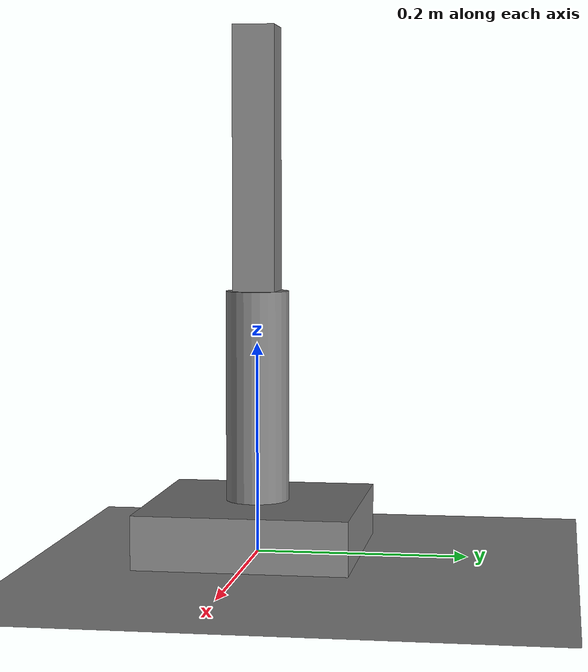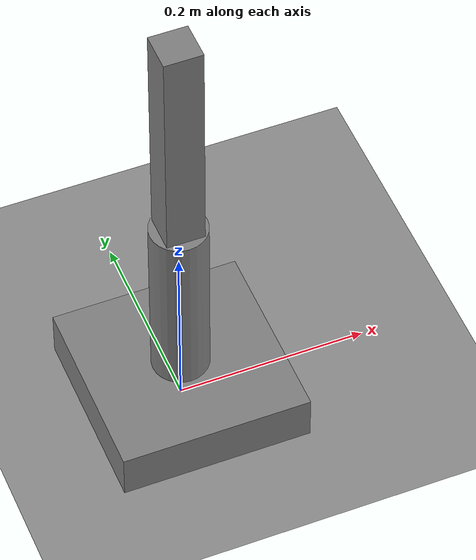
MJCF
<mujoco model="my_robot_scene">
  <include file="mujoco_description_formatted.xml"/>

  <statistic center="0 0 0.3" extent="1"/>

  <visual>
    <headlight diffuse="0.4 0.4 0.4" ambient="0.3 0.3 0.3" specular="0 0 0"/>
    <global azimuth="120" elevation="-20"/>
    <!-- The default shadowclip (1 x extent) speckles the floor with shadow acne; 6 renders clean. -->
    <map shadowclip="6"/>
  </visual>

  <asset>
    <texture type="skybox" builtin="gradient" rgb1="0.82 0.84 0.86" rgb2="0.45 0.55 0.68" width="512" height="3072"/>
    <texture type="2d" name="groundplane" builtin="checker" mark="edge" rgb1="0.6 0.6 0.6" rgb2="0.5 0.5 0.5"
             markrgb="0.8 0.8 0.8" width="300" height="300"/>
    <material name="groundplane" texture="groundplane" texuniform="true" texrepeat="5 5" reflectance="0.1"/>
  </asset>

  <worldbody>
    <!-- trackcom keeps the shadow map centred on the robot if it moves. -->
    <light name="key" directional="true" mode="trackcom" pos="0 0 2" dir="-0.45 0.35 -0.82" castshadow="true"/>
    <geom name="floor" type="plane" size="0 0 0.01" material="groundplane" contype="1" conaffinity="0"/>
  </worldbody>
</mujoco>

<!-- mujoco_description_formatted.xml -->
<mujoco model="my_robot">
  <compiler angle="radian" meshdir="assets/" texturedir="assets/"/>
  <worldbody>
    <body name="link1" pos="0 0 0.05">
      <inertial pos="0 0 0.1" mass="0.5" diaginertia="0.00178 0.00178 0.000225"/>
      <joint name="joint1" range="-3.14159 3.14159" actuatorfrcrange="-10 10" damping="1" armature="0.01"/>
      <body name="link2" pos="0 0 0.2">
        <inertial pos="0 0 0.125" mass="0.3" diaginertia="0.0016 0.0016 8e-05"/>
        <joint name="joint2" range="-1.5708 1.5708" actuatorfrcrange="-10 10" axis="0 1 0" damping="1" armature="0.01"/>
        <geom size="0.02 0.02 0.125" pos="0 0 0.125" type="box" class="collision"/>
        <geom size="0.02 0.02 0.125" pos="0 0 0.125" type="box" class="visual"/>
        <site name="link2" pos="0 0 0" quat="1.0 0 0 0"/>
      </body>
      <geom size="0.03 0.1" pos="0 0 0.1" type="cylinder" class="collision"/>
      <geom size="0.03 0.1" pos="0 0 0.1" type="cylinder" class="visual"/>
      <site name="link1" pos="0 0 0" quat="1.0 0 0 0"/>
    </body>
    <geom size="0.1 0.1 0.025" pos="0 0 0.025" type="box" class="collision"/>
    <geom size="0.1 0.1 0.025" pos="0 0 0.025" type="box" class="visual"/>
    <site name="base_link" pos="0 0 0" quat="1.0 0 0 0"/>
  </worldbody>
  <default>
    <geom contype="0" conaffinity="0"/>
    <default class="visual">
      <geom group="2" type="mesh" contype="0" conaffinity="0"/>
    </default>
    <default class="collision">
      <geom group="3" type="mesh"/>
    </default>
  </default>
  <actuator>
    <position name="joint1" joint="joint1" kp="50" dampratio="1.0" ctrlrange="-3.14159 3.14159"/>
    <position name="joint2" joint="joint2" kp="50" dampratio="1.0" ctrlrange="-1.5708 1.5708"/>
  </actuator>
</mujoco>
